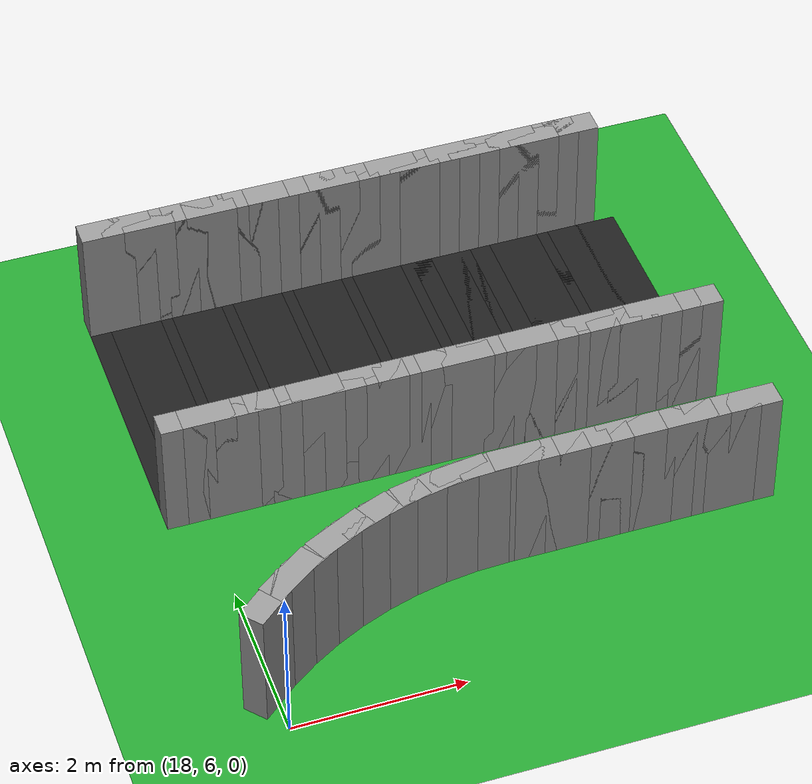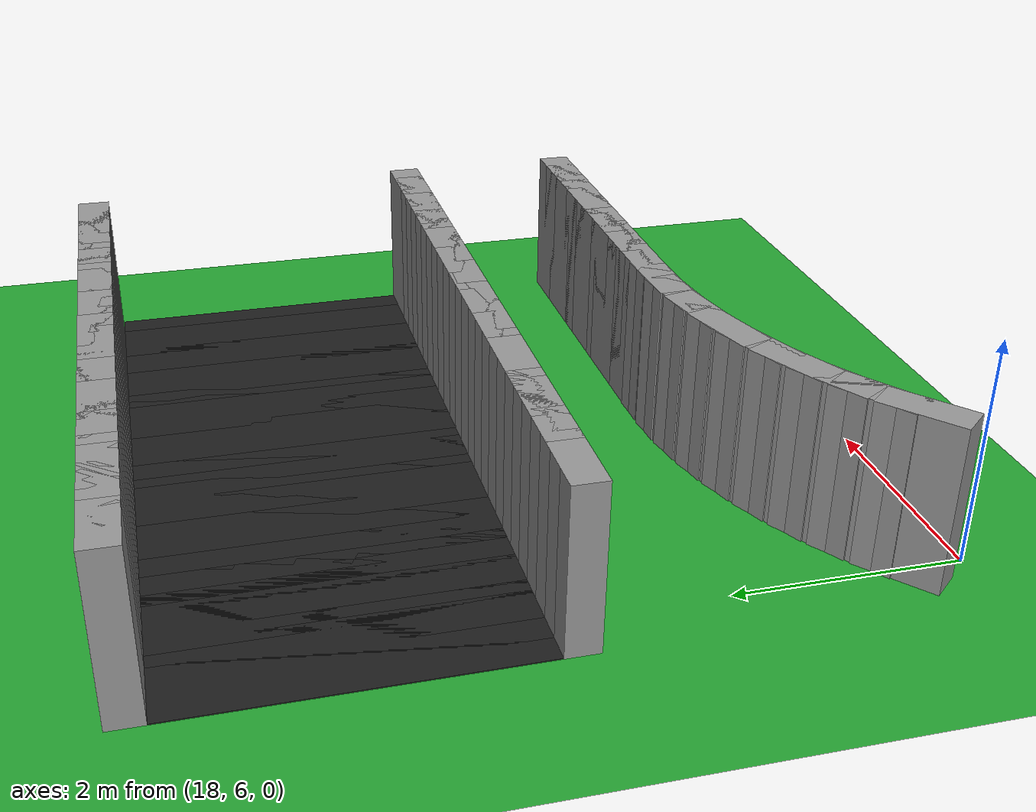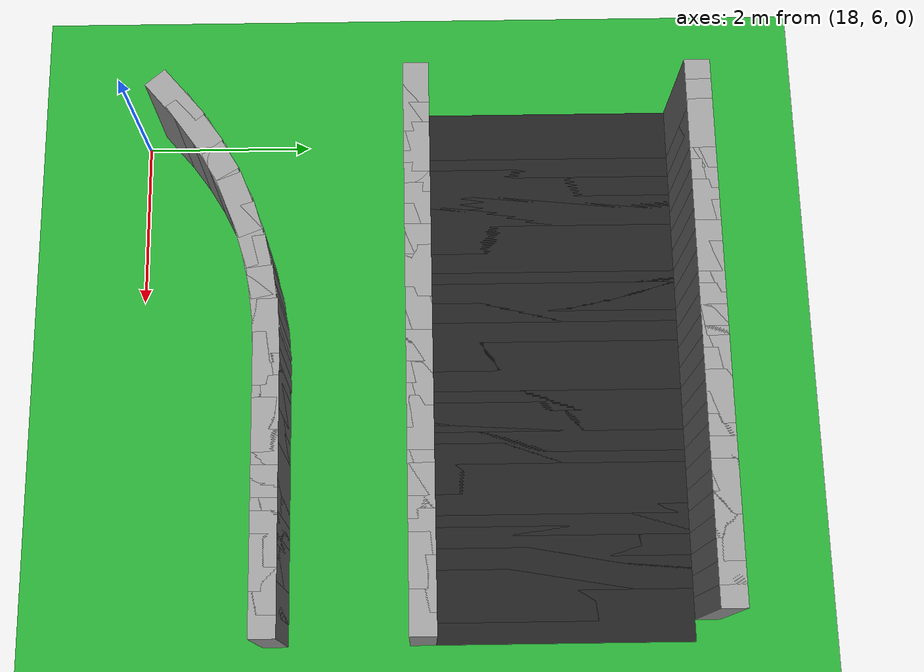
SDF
<sdf version="1.6">
 <world name="loop_extreme">
  <include><uri>model://sun</uri></include>
  <model name="ground_plane">
   <static>true</static>
   <link name="link">
    <collision name="collision">
     <surface><friction><ode><mu>100</mu><mu2>50</mu2></ode></friction></surface>
     <geometry><plane><normal>0 0 1</normal><size>120 120</size></plane></geometry>
    </collision>
    <visual name="visual">
     <geometry><plane><normal>0 0 1</normal><size>120 120</size></plane></geometry>
     <material>
      <script><uri>file://media/materials/scripts/gazebo.material</uri><name>Gazebo/Green</name></script>
     </material>
    </visual>
   </link>
  </model>
  <model name="curbL_89">
   <static>true</static>
   <pose>17.998 6.547 0.750 0 0 0.70272</pose>
   <link name="link">
    <collision name="collision"><geometry><box><size>0.744 0.300 1.500</size></box></geometry></collision>
    <visual name="visual">
     <geometry><box><size>0.744 0.300 1.500</size></box></geometry>
     <material>
      <script><uri>file://media/materials/scripts/gazebo.material</uri><name>Gazebo/Grey</name></script>
     </material>
    </visual>
   </link>
  </model>
  <model name="curbL_90">
   <static>true</static>
   <pose>18.302 6.783 0.750 0 0 0.62005</pose>
   <link name="link">
    <collision name="collision"><geometry><box><size>0.744 0.300 1.500</size></box></geometry></collision>
    <visual name="visual">
     <geometry><box><size>0.744 0.300 1.500</size></box></geometry>
     <material>
      <script><uri>file://media/materials/scripts/gazebo.material</uri><name>Gazebo/Grey</name></script>
     </material>
    </visual>
   </link>
  </model>
  <model name="curbL_91">
   <static>true</static>
   <pose>18.623 6.993 0.750 0 0 0.53738</pose>
   <link name="link">
    <collision name="collision"><geometry><box><size>0.744 0.300 1.500</size></box></geometry></collision>
    <visual name="visual">
     <geometry><box><size>0.744 0.300 1.500</size></box></geometry>
     <material>
      <script><uri>file://media/materials/scripts/gazebo.material</uri><name>Gazebo/Grey</name></script>
     </material>
    </visual>
   </link>
  </model>
  <model name="curbL_92">
   <static>true</static>
   <pose>18.961 7.176 0.750 0 0 0.45470</pose>
   <link name="link">
    <collision name="collision"><geometry><box><size>0.744 0.300 1.500</size></box></geometry></collision>
    <visual name="visual">
     <geometry><box><size>0.744 0.300 1.500</size></box></geometry>
     <material>
      <script><uri>file://media/materials/scripts/gazebo.material</uri><name>Gazebo/Grey</name></script>
     </material>
    </visual>
   </link>
  </model>
  <model name="curbL_93">
   <static>true</static>
   <pose>19.313 7.330 0.750 0 0 0.37203</pose>
   <link name="link">
    <collision name="collision"><geometry><box><size>0.744 0.300 1.500</size></box></geometry></collision>
    <visual name="visual">
     <geometry><box><size>0.744 0.300 1.500</size></box></geometry>
     <material>
      <script><uri>file://media/materials/scripts/gazebo.material</uri><name>Gazebo/Grey</name></script>
     </material>
    </visual>
   </link>
  </model>
  <model name="curbL_94">
   <static>true</static>
   <pose>19.676 7.455 0.750 0 0 0.28936</pose>
   <link name="link">
    <collision name="collision"><geometry><box><size>0.744 0.300 1.500</size></box></geometry></collision>
    <visual name="visual">
     <geometry><box><size>0.744 0.300 1.500</size></box></geometry>
     <material>
      <script><uri>file://media/materials/scripts/gazebo.material</uri><name>Gazebo/Grey</name></script>
     </material>
    </visual>
   </link>
  </model>
  <model name="curbL_95">
   <static>true</static>
   <pose>20.048 7.549 0.750 0 0 0.20668</pose>
   <link name="link">
    <collision name="collision"><geometry><box><size>0.744 0.300 1.500</size></box></geometry></collision>
    <visual name="visual">
     <geometry><box><size>0.744 0.300 1.500</size></box></geometry>
     <material>
      <script><uri>file://media/materials/scripts/gazebo.material</uri><name>Gazebo/Grey</name></script>
     </material>
    </visual>
   </link>
  </model>
  <model name="curbL_96">
   <static>true</static>
   <pose>20.427 7.612 0.750 0 0 0.12401</pose>
   <link name="link">
    <collision name="collision"><geometry><box><size>0.744 0.300 1.500</size></box></geometry></collision>
    <visual name="visual">
     <geometry><box><size>0.744 0.300 1.500</size></box></geometry>
     <material>
      <script><uri>file://media/materials/scripts/gazebo.material</uri><name>Gazebo/Grey</name></script>
     </material>
    </visual>
   </link>
  </model>
  <model name="curbL_97">
   <static>true</static>
   <pose>20.810 7.644 0.750 0 0 0.04134</pose>
   <link name="link">
    <collision name="collision"><geometry><box><size>0.744 0.300 1.500</size></box></geometry></collision>
    <visual name="visual">
     <geometry><box><size>0.744 0.300 1.500</size></box></geometry>
     <material>
      <script><uri>file://media/materials/scripts/gazebo.material</uri><name>Gazebo/Grey</name></script>
     </material>
    </visual>
   </link>
  </model>
  <model name="curbL_98">
   <static>true</static>
   <pose>21.127 7.652 0.750 0 0 0.00000</pose>
   <link name="link">
    <collision name="collision"><geometry><box><size>0.610 0.300 1.500</size></box></geometry></collision>
    <visual name="visual">
     <geometry><box><size>0.610 0.300 1.500</size></box></geometry>
     <material>
      <script><uri>file://media/materials/scripts/gazebo.material</uri><name>Gazebo/Grey</name></script>
     </material>
    </visual>
   </link>
  </model>
  <model name="curbL_99">
   <static>true</static>
   <pose>21.377 7.652 0.750 0 0 0.00000</pose>
   <link name="link">
    <collision name="collision"><geometry><box><size>0.610 0.300 1.500</size></box></geometry></collision>
    <visual name="visual">
     <geometry><box><size>0.610 0.300 1.500</size></box></geometry>
     <material>
      <script><uri>file://media/materials/scripts/gazebo.material</uri><name>Gazebo/Grey</name></script>
     </material>
    </visual>
   </link>
  </model>
  <model name="curbL_100">
   <static>true</static>
   <pose>21.627 7.652 0.750 0 0 0.00000</pose>
   <link name="link">
    <collision name="collision"><geometry><box><size>0.610 0.300 1.500</size></box></geometry></collision>
    <visual name="visual">
     <geometry><box><size>0.610 0.300 1.500</size></box></geometry>
     <material>
      <script><uri>file://media/materials/scripts/gazebo.material</uri><name>Gazebo/Grey</name></script>
     </material>
    </visual>
   </link>
  </model>
  <model name="curbL_101">
   <static>true</static>
   <pose>21.877 7.652 0.750 0 0 0.00000</pose>
   <link name="link">
    <collision name="collision"><geometry><box><size>0.610 0.300 1.500</size></box></geometry></collision>
    <visual name="visual">
     <geometry><box><size>0.610 0.300 1.500</size></box></geometry>
     <material>
      <script><uri>file://media/materials/scripts/gazebo.material</uri><name>Gazebo/Grey</name></script>
     </material>
    </visual>
   </link>
  </model>
  <model name="curbL_102">
   <static>true</static>
   <pose>22.127 7.652 0.750 0 0 0.00000</pose>
   <link name="link">
    <collision name="collision"><geometry><box><size>0.610 0.300 1.500</size></box></geometry></collision>
    <visual name="visual">
     <geometry><box><size>0.610 0.300 1.500</size></box></geometry>
     <material>
      <script><uri>file://media/materials/scripts/gazebo.material</uri><name>Gazebo/Grey</name></script>
     </material>
    </visual>
   </link>
  </model>
  <model name="curbL_103">
   <static>true</static>
   <pose>22.377 7.652 0.750 0 0 0.00000</pose>
   <link name="link">
    <collision name="collision"><geometry><box><size>0.610 0.300 1.500</size></box></geometry></collision>
    <visual name="visual">
     <geometry><box><size>0.610 0.300 1.500</size></box></geometry>
     <material>
      <script><uri>file://media/materials/scripts/gazebo.material</uri><name>Gazebo/Grey</name></script>
     </material>
    </visual>
   </link>
  </model>
  <model name="curbL_104">
   <static>true</static>
   <pose>22.627 7.652 0.750 0 0 0.00000</pose>
   <link name="link">
    <collision name="collision"><geometry><box><size>0.610 0.300 1.500</size></box></geometry></collision>
    <visual name="visual">
     <geometry><box><size>0.610 0.300 1.500</size></box></geometry>
     <material>
      <script><uri>file://media/materials/scripts/gazebo.material</uri><name>Gazebo/Grey</name></script>
     </material>
    </visual>
   </link>
  </model>
  <model name="curbL_105">
   <static>true</static>
   <pose>22.877 7.652 0.750 0 0 0.00000</pose>
   <link name="link">
    <collision name="collision"><geometry><box><size>0.610 0.300 1.500</size></box></geometry></collision>
    <visual name="visual">
     <geometry><box><size>0.610 0.300 1.500</size></box></geometry>
     <material>
      <script><uri>file://media/materials/scripts/gazebo.material</uri><name>Gazebo/Grey</name></script>
     </material>
    </visual>
   </link>
  </model>
  <model name="curbL_106">
   <static>true</static>
   <pose>23.127 7.652 0.750 0 0 0.00000</pose>
   <link name="link">
    <collision name="collision"><geometry><box><size>0.610 0.300 1.500</size></box></geometry></collision>
    <visual name="visual">
     <geometry><box><size>0.610 0.300 1.500</size></box></geometry>
     <material>
      <script><uri>file://media/materials/scripts/gazebo.material</uri><name>Gazebo/Grey</name></script>
     </material>
    </visual>
   </link>
  </model>
  <model name="curbL_107">
   <static>true</static>
   <pose>23.377 7.652 0.750 0 0 0.00000</pose>
   <link name="link">
    <collision name="collision"><geometry><box><size>0.610 0.300 1.500</size></box></geometry></collision>
    <visual name="visual">
     <geometry><box><size>0.610 0.300 1.500</size></box></geometry>
     <material>
      <script><uri>file://media/materials/scripts/gazebo.material</uri><name>Gazebo/Grey</name></script>
     </material>
    </visual>
   </link>
  </model>
  <model name="curbL_108">
   <static>true</static>
   <pose>23.627 7.652 0.750 0 0 0.00000</pose>
   <link name="link">
    <collision name="collision"><geometry><box><size>0.610 0.300 1.500</size></box></geometry></collision>
    <visual name="visual">
     <geometry><box><size>0.610 0.300 1.500</size></box></geometry>
     <material>
      <script><uri>file://media/materials/scripts/gazebo.material</uri><name>Gazebo/Grey</name></script>
     </material>
    </visual>
   </link>
  </model>
  <model name="curbL_109">
   <static>true</static>
   <pose>23.877 7.652 0.750 0 0 0.00000</pose>
   <link name="link">
    <collision name="collision"><geometry><box><size>0.610 0.300 1.500</size></box></geometry></collision>
    <visual name="visual">
     <geometry><box><size>0.610 0.300 1.500</size></box></geometry>
     <material>
      <script><uri>file://media/materials/scripts/gazebo.material</uri><name>Gazebo/Grey</name></script>
     </material>
    </visual>
   </link>
  </model>
  <model name="asphalt_149">
   <static>true</static>
   <pose>23.877 11.004 0.005 0 0 3.14159</pose>
   <link name="link">
    <visual name="visual">
     <geometry><box><size>0.610 3.000 0.010</size></box></geometry>
     <material>
      <script><uri>file://media/materials/scripts/gazebo.material</uri><name>Gazebo/Black</name></script>
     </material>
    </visual>
   </link>
  </model>
  <model name="curbL_149">
   <static>true</static>
   <pose>23.877 9.354 0.750 0 0 3.14159</pose>
   <link name="link">
    <collision name="collision"><geometry><box><size>0.610 0.300 1.500</size></box></geometry></collision>
    <visual name="visual">
     <geometry><box><size>0.610 0.300 1.500</size></box></geometry>
     <material>
      <script><uri>file://media/materials/scripts/gazebo.material</uri><name>Gazebo/Grey</name></script>
     </material>
    </visual>
   </link>
  </model>
  <model name="asphalt_150">
   <static>true</static>
   <pose>23.627 11.004 0.005 0 0 3.14159</pose>
   <link name="link">
    <visual name="visual">
     <geometry><box><size>0.610 3.000 0.010</size></box></geometry>
     <material>
      <script><uri>file://media/materials/scripts/gazebo.material</uri><name>Gazebo/Black</name></script>
     </material>
    </visual>
   </link>
  </model>
  <model name="curbL_150">
   <static>true</static>
   <pose>23.627 9.354 0.750 0 0 3.14159</pose>
   <link name="link">
    <collision name="collision"><geometry><box><size>0.610 0.300 1.500</size></box></geometry></collision>
    <visual name="visual">
     <geometry><box><size>0.610 0.300 1.500</size></box></geometry>
     <material>
      <script><uri>file://media/materials/scripts/gazebo.material</uri><name>Gazebo/Grey</name></script>
     </material>
    </visual>
   </link>
  </model>
  <model name="curbR_150">
   <static>true</static>
   <pose>23.627 12.654 0.750 0 0 3.14159</pose>
   <link name="link">
    <collision name="collision"><geometry><box><size>0.610 0.300 1.500</size></box></geometry></collision>
    <visual name="visual">
     <geometry><box><size>0.610 0.300 1.500</size></box></geometry>
     <material>
      <script><uri>file://media/materials/scripts/gazebo.material</uri><name>Gazebo/Grey</name></script>
     </material>
    </visual>
   </link>
  </model>
  <model name="asphalt_151">
   <static>true</static>
   <pose>23.377 11.004 0.005 0 0 3.14159</pose>
   <link name="link">
    <visual name="visual">
     <geometry><box><size>0.610 3.000 0.010</size></box></geometry>
     <material>
      <script><uri>file://media/materials/scripts/gazebo.material</uri><name>Gazebo/Black</name></script>
     </material>
    </visual>
   </link>
  </model>
  <model name="curbL_151">
   <static>true</static>
   <pose>23.377 9.354 0.750 0 0 3.14159</pose>
   <link name="link">
    <collision name="collision"><geometry><box><size>0.610 0.300 1.500</size></box></geometry></collision>
    <visual name="visual">
     <geometry><box><size>0.610 0.300 1.500</size></box></geometry>
     <material>
      <script><uri>file://media/materials/scripts/gazebo.material</uri><name>Gazebo/Grey</name></script>
     </material>
    </visual>
   </link>
  </model>
  <model name="curbR_151">
   <static>true</static>
   <pose>23.377 12.654 0.750 0 0 3.14159</pose>
   <link name="link">
    <collision name="collision"><geometry><box><size>0.610 0.300 1.500</size></box></geometry></collision>
    <visual name="visual">
     <geometry><box><size>0.610 0.300 1.500</size></box></geometry>
     <material>
      <script><uri>file://media/materials/scripts/gazebo.material</uri><name>Gazebo/Grey</name></script>
     </material>
    </visual>
   </link>
  </model>
  <model name="asphalt_152">
   <static>true</static>
   <pose>23.127 11.004 0.005 0 0 3.14159</pose>
   <link name="link">
    <visual name="visual">
     <geometry><box><size>0.610 3.000 0.010</size></box></geometry>
     <material>
      <script><uri>file://media/materials/scripts/gazebo.material</uri><name>Gazebo/Black</name></script>
     </material>
    </visual>
   </link>
  </model>
  <model name="curbL_152">
   <static>true</static>
   <pose>23.127 9.354 0.750 0 0 3.14159</pose>
   <link name="link">
    <collision name="collision"><geometry><box><size>0.610 0.300 1.500</size></box></geometry></collision>
    <visual name="visual">
     <geometry><box><size>0.610 0.300 1.500</size></box></geometry>
     <material>
      <script><uri>file://media/materials/scripts/gazebo.material</uri><name>Gazebo/Grey</name></script>
     </material>
    </visual>
   </link>
  </model>
  <model name="curbR_152">
   <static>true</static>
   <pose>23.127 12.654 0.750 0 0 3.14159</pose>
   <link name="link">
    <collision name="collision"><geometry><box><size>0.610 0.300 1.500</size></box></geometry></collision>
    <visual name="visual">
     <geometry><box><size>0.610 0.300 1.500</size></box></geometry>
     <material>
      <script><uri>file://media/materials/scripts/gazebo.material</uri><name>Gazebo/Grey</name></script>
     </material>
    </visual>
   </link>
  </model>
  <model name="asphalt_153">
   <static>true</static>
   <pose>22.877 11.004 0.005 0 0 3.14159</pose>
   <link name="link">
    <visual name="visual">
     <geometry><box><size>0.610 3.000 0.010</size></box></geometry>
     <material>
      <script><uri>file://media/materials/scripts/gazebo.material</uri><name>Gazebo/Black</name></script>
     </material>
    </visual>
   </link>
  </model>
  <model name="curbL_153">
   <static>true</static>
   <pose>22.877 9.354 0.750 0 0 3.14159</pose>
   <link name="link">
    <collision name="collision"><geometry><box><size>0.610 0.300 1.500</size></box></geometry></collision>
    <visual name="visual">
     <geometry><box><size>0.610 0.300 1.500</size></box></geometry>
     <material>
      <script><uri>file://media/materials/scripts/gazebo.material</uri><name>Gazebo/Grey</name></script>
     </material>
    </visual>
   </link>
  </model>
  <model name="curbR_153">
   <static>true</static>
   <pose>22.877 12.654 0.750 0 0 3.14159</pose>
   <link name="link">
    <collision name="collision"><geometry><box><size>0.610 0.300 1.500</size></box></geometry></collision>
    <visual name="visual">
     <geometry><box><size>0.610 0.300 1.500</size></box></geometry>
     <material>
      <script><uri>file://media/materials/scripts/gazebo.material</uri><name>Gazebo/Grey</name></script>
     </material>
    </visual>
   </link>
  </model>
  <model name="asphalt_154">
   <static>true</static>
   <pose>22.627 11.004 0.005 0 0 3.14159</pose>
   <link name="link">
    <visual name="visual">
     <geometry><box><size>0.610 3.000 0.010</size></box></geometry>
     <material>
      <script><uri>file://media/materials/scripts/gazebo.material</uri><name>Gazebo/Black</name></script>
     </material>
    </visual>
   </link>
  </model>
  <model name="curbL_154">
   <static>true</static>
   <pose>22.627 9.354 0.750 0 0 3.14159</pose>
   <link name="link">
    <collision name="collision"><geometry><box><size>0.610 0.300 1.500</size></box></geometry></collision>
    <visual name="visual">
     <geometry><box><size>0.610 0.300 1.500</size></box></geometry>
     <material>
      <script><uri>file://media/materials/scripts/gazebo.material</uri><name>Gazebo/Grey</name></script>
     </material>
    </visual>
   </link>
  </model>
  <model name="curbR_154">
   <static>true</static>
   <pose>22.627 12.654 0.750 0 0 3.14159</pose>
   <link name="link">
    <collision name="collision"><geometry><box><size>0.610 0.300 1.500</size></box></geometry></collision>
    <visual name="visual">
     <geometry><box><size>0.610 0.300 1.500</size></box></geometry>
     <material>
      <script><uri>file://media/materials/scripts/gazebo.material</uri><name>Gazebo/Grey</name></script>
     </material>
    </visual>
   </link>
  </model>
  <model name="asphalt_155">
   <static>true</static>
   <pose>22.377 11.004 0.005 0 0 3.14159</pose>
   <link name="link">
    <visual name="visual">
     <geometry><box><size>0.610 3.000 0.010</size></box></geometry>
     <material>
      <script><uri>file://media/materials/scripts/gazebo.material</uri><name>Gazebo/Black</name></script>
     </material>
    </visual>
   </link>
  </model>
  <model name="curbL_155">
   <static>true</static>
   <pose>22.377 9.354 0.750 0 0 3.14159</pose>
   <link name="link">
    <collision name="collision"><geometry><box><size>0.610 0.300 1.500</size></box></geometry></collision>
    <visual name="visual">
     <geometry><box><size>0.610 0.300 1.500</size></box></geometry>
     <material>
      <script><uri>file://media/materials/scripts/gazebo.material</uri><name>Gazebo/Grey</name></script>
     </material>
    </visual>
   </link>
  </model>
  <model name="curbR_155">
   <static>true</static>
   <pose>22.377 12.654 0.750 0 0 3.14159</pose>
   <link name="link">
    <collision name="collision"><geometry><box><size>0.610 0.300 1.500</size></box></geometry></collision>
    <visual name="visual">
     <geometry><box><size>0.610 0.300 1.500</size></box></geometry>
     <material>
      <script><uri>file://media/materials/scripts/gazebo.material</uri><name>Gazebo/Grey</name></script>
     </material>
    </visual>
   </link>
  </model>
  <model name="asphalt_156">
   <static>true</static>
   <pose>22.127 11.004 0.005 0 0 3.14159</pose>
   <link name="link">
    <visual name="visual">
     <geometry><box><size>0.610 3.000 0.010</size></box></geometry>
     <material>
      <script><uri>file://media/materials/scripts/gazebo.material</uri><name>Gazebo/Black</name></script>
     </material>
    </visual>
   </link>
  </model>
  <model name="curbL_156">
   <static>true</static>
   <pose>22.127 9.354 0.750 0 0 3.14159</pose>
   <link name="link">
    <collision name="collision"><geometry><box><size>0.610 0.300 1.500</size></box></geometry></collision>
    <visual name="visual">
     <geometry><box><size>0.610 0.300 1.500</size></box></geometry>
     <material>
      <script><uri>file://media/materials/scripts/gazebo.material</uri><name>Gazebo/Grey</name></script>
     </material>
    </visual>
   </link>
  </model>
  <model name="curbR_156">
   <static>true</static>
   <pose>22.127 12.654 0.750 0 0 3.14159</pose>
   <link name="link">
    <collision name="collision"><geometry><box><size>0.610 0.300 1.500</size></box></geometry></collision>
    <visual name="visual">
     <geometry><box><size>0.610 0.300 1.500</size></box></geometry>
     <material>
      <script><uri>file://media/materials/scripts/gazebo.material</uri><name>Gazebo/Grey</name></script>
     </material>
    </visual>
   </link>
  </model>
  <model name="asphalt_157">
   <static>true</static>
   <pose>21.877 11.004 0.005 0 0 3.14159</pose>
   <link name="link">
    <visual name="visual">
     <geometry><box><size>0.610 3.000 0.010</size></box></geometry>
     <material>
      <script><uri>file://media/materials/scripts/gazebo.material</uri><name>Gazebo/Black</name></script>
     </material>
    </visual>
   </link>
  </model>
  <model name="curbL_157">
   <static>true</static>
   <pose>21.877 9.354 0.750 0 0 3.14159</pose>
   <link name="link">
    <collision name="collision"><geometry><box><size>0.610 0.300 1.500</size></box></geometry></collision>
    <visual name="visual">
     <geometry><box><size>0.610 0.300 1.500</size></box></geometry>
     <material>
      <script><uri>file://media/materials/scripts/gazebo.material</uri><name>Gazebo/Grey</name></script>
     </material>
    </visual>
   </link>
  </model>
  <model name="curbR_157">
   <static>true</static>
   <pose>21.877 12.654 0.750 0 0 3.14159</pose>
   <link name="link">
    <collision name="collision"><geometry><box><size>0.610 0.300 1.500</size></box></geometry></collision>
    <visual name="visual">
     <geometry><box><size>0.610 0.300 1.500</size></box></geometry>
     <material>
      <script><uri>file://media/materials/scripts/gazebo.material</uri><name>Gazebo/Grey</name></script>
     </material>
    </visual>
   </link>
  </model>
  <model name="asphalt_158">
   <static>true</static>
   <pose>21.627 11.004 0.005 0 0 3.14159</pose>
   <link name="link">
    <visual name="visual">
     <geometry><box><size>0.610 3.000 0.010</size></box></geometry>
     <material>
      <script><uri>file://media/materials/scripts/gazebo.material</uri><name>Gazebo/Black</name></script>
     </material>
    </visual>
   </link>
  </model>
  <model name="curbL_158">
   <static>true</static>
   <pose>21.627 9.354 0.750 0 0 3.14159</pose>
   <link name="link">
    <collision name="collision"><geometry><box><size>0.610 0.300 1.500</size></box></geometry></collision>
    <visual name="visual">
     <geometry><box><size>0.610 0.300 1.500</size></box></geometry>
     <material>
      <script><uri>file://media/materials/scripts/gazebo.material</uri><name>Gazebo/Grey</name></script>
     </material>
    </visual>
   </link>
  </model>
  <model name="curbR_158">
   <static>true</static>
   <pose>21.627 12.654 0.750 0 0 3.14159</pose>
   <link name="link">
    <collision name="collision"><geometry><box><size>0.610 0.300 1.500</size></box></geometry></collision>
    <visual name="visual">
     <geometry><box><size>0.610 0.300 1.500</size></box></geometry>
     <material>
      <script><uri>file://media/materials/scripts/gazebo.material</uri><name>Gazebo/Grey</name></script>
     </material>
    </visual>
   </link>
  </model>
  <model name="asphalt_159">
   <static>true</static>
   <pose>21.377 11.004 0.005 0 0 3.14159</pose>
   <link name="link">
    <visual name="visual">
     <geometry><box><size>0.610 3.000 0.010</size></box></geometry>
     <material>
      <script><uri>file://media/materials/scripts/gazebo.material</uri><name>Gazebo/Black</name></script>
     </material>
    </visual>
   </link>
  </model>
  <model name="curbL_159">
   <static>true</static>
   <pose>21.377 9.354 0.750 0 0 3.14159</pose>
   <link name="link">
    <collision name="collision"><geometry><box><size>0.610 0.300 1.500</size></box></geometry></collision>
    <visual name="visual">
     <geometry><box><size>0.610 0.300 1.500</size></box></geometry>
     <material>
      <script><uri>file://media/materials/scripts/gazebo.material</uri><name>Gazebo/Grey</name></script>
     </material>
    </visual>
   </link>
  </model>
  <model name="curbR_159">
   <static>true</static>
   <pose>21.377 12.654 0.750 0 0 3.14159</pose>
   <link name="link">
    <collision name="collision"><geometry><box><size>0.610 0.300 1.500</size></box></geometry></collision>
    <visual name="visual">
     <geometry><box><size>0.610 0.300 1.500</size></box></geometry>
     <material>
      <script><uri>file://media/materials/scripts/gazebo.material</uri><name>Gazebo/Grey</name></script>
     </material>
    </visual>
   </link>
  </model>
  <model name="asphalt_160">
   <static>true</static>
   <pose>21.127 11.004 0.005 0 0 3.14159</pose>
   <link name="link">
    <visual name="visual">
     <geometry><box><size>0.610 3.000 0.010</size></box></geometry>
     <material>
      <script><uri>file://media/materials/scripts/gazebo.material</uri><name>Gazebo/Black</name></script>
     </material>
    </visual>
   </link>
  </model>
  <model name="curbL_160">
   <static>true</static>
   <pose>21.127 9.354 0.750 0 0 3.14159</pose>
   <link name="link">
    <collision name="collision"><geometry><box><size>0.610 0.300 1.500</size></box></geometry></collision>
    <visual name="visual">
     <geometry><box><size>0.610 0.300 1.500</size></box></geometry>
     <material>
      <script><uri>file://media/materials/scripts/gazebo.material</uri><name>Gazebo/Grey</name></script>
     </material>
    </visual>
   </link>
  </model>
  <model name="curbR_160">
   <static>true</static>
   <pose>21.127 12.654 0.750 0 0 3.14159</pose>
   <link name="link">
    <collision name="collision"><geometry><box><size>0.610 0.300 1.500</size></box></geometry></collision>
    <visual name="visual">
     <geometry><box><size>0.610 0.300 1.500</size></box></geometry>
     <material>
      <script><uri>file://media/materials/scripts/gazebo.material</uri><name>Gazebo/Grey</name></script>
     </material>
    </visual>
   </link>
  </model>
  <model name="asphalt_161">
   <static>true</static>
   <pose>20.877 11.004 0.005 0 0 3.14159</pose>
   <link name="link">
    <visual name="visual">
     <geometry><box><size>0.610 3.000 0.010</size></box></geometry>
     <material>
      <script><uri>file://media/materials/scripts/gazebo.material</uri><name>Gazebo/Black</name></script>
     </material>
    </visual>
   </link>
  </model>
  <model name="curbL_161">
   <static>true</static>
   <pose>20.877 9.354 0.750 0 0 3.14159</pose>
   <link name="link">
    <collision name="collision"><geometry><box><size>0.610 0.300 1.500</size></box></geometry></collision>
    <visual name="visual">
     <geometry><box><size>0.610 0.300 1.500</size></box></geometry>
     <material>
      <script><uri>file://media/materials/scripts/gazebo.material</uri><name>Gazebo/Grey</name></script>
     </material>
    </visual>
   </link>
  </model>
  <model name="curbR_161">
   <static>true</static>
   <pose>20.877 12.654 0.750 0 0 3.14159</pose>
   <link name="link">
    <collision name="collision"><geometry><box><size>0.610 0.300 1.500</size></box></geometry></collision>
    <visual name="visual">
     <geometry><box><size>0.610 0.300 1.500</size></box></geometry>
     <material>
      <script><uri>file://media/materials/scripts/gazebo.material</uri><name>Gazebo/Grey</name></script>
     </material>
    </visual>
   </link>
  </model>
  <model name="asphalt_162">
   <static>true</static>
   <pose>20.627 11.004 0.005 0 0 3.14159</pose>
   <link name="link">
    <visual name="visual">
     <geometry><box><size>0.610 3.000 0.010</size></box></geometry>
     <material>
      <script><uri>file://media/materials/scripts/gazebo.material</uri><name>Gazebo/Black</name></script>
     </material>
    </visual>
   </link>
  </model>
  <model name="curbL_162">
   <static>true</static>
   <pose>20.627 9.354 0.750 0 0 3.14159</pose>
   <link name="link">
    <collision name="collision"><geometry><box><size>0.610 0.300 1.500</size></box></geometry></collision>
    <visual name="visual">
     <geometry><box><size>0.610 0.300 1.500</size></box></geometry>
     <material>
      <script><uri>file://media/materials/scripts/gazebo.material</uri><name>Gazebo/Grey</name></script>
     </material>
    </visual>
   </link>
  </model>
  <model name="curbR_162">
   <static>true</static>
   <pose>20.627 12.654 0.750 0 0 3.14159</pose>
   <link name="link">
    <collision name="collision"><geometry><box><size>0.610 0.300 1.500</size></box></geometry></collision>
    <visual name="visual">
     <geometry><box><size>0.610 0.300 1.500</size></box></geometry>
     <material>
      <script><uri>file://media/materials/scripts/gazebo.material</uri><name>Gazebo/Grey</name></script>
     </material>
    </visual>
   </link>
  </model>
  <model name="asphalt_163">
   <static>true</static>
   <pose>20.377 11.004 0.005 0 0 3.14159</pose>
   <link name="link">
    <visual name="visual">
     <geometry><box><size>0.610 3.000 0.010</size></box></geometry>
     <material>
      <script><uri>file://media/materials/scripts/gazebo.material</uri><name>Gazebo/Black</name></script>
     </material>
    </visual>
   </link>
  </model>
  <model name="curbL_163">
   <static>true</static>
   <pose>20.377 9.354 0.750 0 0 3.14159</pose>
   <link name="link">
    <collision name="collision"><geometry><box><size>0.610 0.300 1.500</size></box></geometry></collision>
    <visual name="visual">
     <geometry><box><size>0.610 0.300 1.500</size></box></geometry>
     <material>
      <script><uri>file://media/materials/scripts/gazebo.material</uri><name>Gazebo/Grey</name></script>
     </material>
    </visual>
   </link>
  </model>
  <model name="curbR_163">
   <static>true</static>
   <pose>20.377 12.654 0.750 0 0 3.14159</pose>
   <link name="link">
    <collision name="collision"><geometry><box><size>0.610 0.300 1.500</size></box></geometry></collision>
    <visual name="visual">
     <geometry><box><size>0.610 0.300 1.500</size></box></geometry>
     <material>
      <script><uri>file://media/materials/scripts/gazebo.material</uri><name>Gazebo/Grey</name></script>
     </material>
    </visual>
   </link>
  </model>
  <model name="asphalt_164">
   <static>true</static>
   <pose>20.127 11.004 0.005 0 0 3.14159</pose>
   <link name="link">
    <visual name="visual">
     <geometry><box><size>0.610 3.000 0.010</size></box></geometry>
     <material>
      <script><uri>file://media/materials/scripts/gazebo.material</uri><name>Gazebo/Black</name></script>
     </material>
    </visual>
   </link>
  </model>
  <model name="curbL_164">
   <static>true</static>
   <pose>20.127 9.354 0.750 0 0 3.14159</pose>
   <link name="link">
    <collision name="collision"><geometry><box><size>0.610 0.300 1.500</size></box></geometry></collision>
    <visual name="visual">
     <geometry><box><size>0.610 0.300 1.500</size></box></geometry>
     <material>
      <script><uri>file://media/materials/scripts/gazebo.material</uri><name>Gazebo/Grey</name></script>
     </material>
    </visual>
   </link>
  </model>
  <model name="curbR_164">
   <static>true</static>
   <pose>20.127 12.654 0.750 0 0 3.14159</pose>
   <link name="link">
    <collision name="collision"><geometry><box><size>0.610 0.300 1.500</size></box></geometry></collision>
    <visual name="visual">
     <geometry><box><size>0.610 0.300 1.500</size></box></geometry>
     <material>
      <script><uri>file://media/materials/scripts/gazebo.material</uri><name>Gazebo/Grey</name></script>
     </material>
    </visual>
   </link>
  </model>
  <model name="asphalt_165">
   <static>true</static>
   <pose>19.877 11.004 0.005 0 0 3.14159</pose>
   <link name="link">
    <visual name="visual">
     <geometry><box><size>0.610 3.000 0.010</size></box></geometry>
     <material>
      <script><uri>file://media/materials/scripts/gazebo.material</uri><name>Gazebo/Black</name></script>
     </material>
    </visual>
   </link>
  </model>
  <model name="curbL_165">
   <static>true</static>
   <pose>19.877 9.354 0.750 0 0 3.14159</pose>
   <link name="link">
    <collision name="collision"><geometry><box><size>0.610 0.300 1.500</size></box></geometry></collision>
    <visual name="visual">
     <geometry><box><size>0.610 0.300 1.500</size></box></geometry>
     <material>
      <script><uri>file://media/materials/scripts/gazebo.material</uri><name>Gazebo/Grey</name></script>
     </material>
    </visual>
   </link>
  </model>
  <model name="curbR_165">
   <static>true</static>
   <pose>19.877 12.654 0.750 0 0 3.14159</pose>
   <link name="link">
    <collision name="collision"><geometry><box><size>0.610 0.300 1.500</size></box></geometry></collision>
    <visual name="visual">
     <geometry><box><size>0.610 0.300 1.500</size></box></geometry>
     <material>
      <script><uri>file://media/materials/scripts/gazebo.material</uri><name>Gazebo/Grey</name></script>
     </material>
    </visual>
   </link>
  </model>
  <model name="asphalt_166">
   <static>true</static>
   <pose>19.627 11.004 0.005 0 0 3.14159</pose>
   <link name="link">
    <visual name="visual">
     <geometry><box><size>0.610 3.000 0.010</size></box></geometry>
     <material>
      <script><uri>file://media/materials/scripts/gazebo.material</uri><name>Gazebo/Black</name></script>
     </material>
    </visual>
   </link>
  </model>
  <model name="curbL_166">
   <static>true</static>
   <pose>19.627 9.354 0.750 0 0 3.14159</pose>
   <link name="link">
    <collision name="collision"><geometry><box><size>0.610 0.300 1.500</size></box></geometry></collision>
    <visual name="visual">
     <geometry><box><size>0.610 0.300 1.500</size></box></geometry>
     <material>
      <script><uri>file://media/materials/scripts/gazebo.material</uri><name>Gazebo/Grey</name></script>
     </material>
    </visual>
   </link>
  </model>
  <model name="curbR_166">
   <static>true</static>
   <pose>19.627 12.654 0.750 0 0 3.14159</pose>
   <link name="link">
    <collision name="collision"><geometry><box><size>0.610 0.300 1.500</size></box></geometry></collision>
    <visual name="visual">
     <geometry><box><size>0.610 0.300 1.500</size></box></geometry>
     <material>
      <script><uri>file://media/materials/scripts/gazebo.material</uri><name>Gazebo/Grey</name></script>
     </material>
    </visual>
   </link>
  </model>
  <model name="asphalt_167">
   <static>true</static>
   <pose>19.377 11.004 0.005 0 0 3.14159</pose>
   <link name="link">
    <visual name="visual">
     <geometry><box><size>0.610 3.000 0.010</size></box></geometry>
     <material>
      <script><uri>file://media/materials/scripts/gazebo.material</uri><name>Gazebo/Black</name></script>
     </material>
    </visual>
   </link>
  </model>
  <model name="curbL_167">
   <static>true</static>
   <pose>19.377 9.354 0.750 0 0 3.14159</pose>
   <link name="link">
    <collision name="collision"><geometry><box><size>0.610 0.300 1.500</size></box></geometry></collision>
    <visual name="visual">
     <geometry><box><size>0.610 0.300 1.500</size></box></geometry>
     <material>
      <script><uri>file://media/materials/scripts/gazebo.material</uri><name>Gazebo/Grey</name></script>
     </material>
    </visual>
   </link>
  </model>
  <model name="curbR_167">
   <static>true</static>
   <pose>19.377 12.654 0.750 0 0 3.14159</pose>
   <link name="link">
    <collision name="collision"><geometry><box><size>0.610 0.300 1.500</size></box></geometry></collision>
    <visual name="visual">
     <geometry><box><size>0.610 0.300 1.500</size></box></geometry>
     <material>
      <script><uri>file://media/materials/scripts/gazebo.material</uri><name>Gazebo/Grey</name></script>
     </material>
    </visual>
   </link>
  </model>
  <model name="asphalt_168">
   <static>true</static>
   <pose>19.127 11.004 0.005 0 0 3.14159</pose>
   <link name="link">
    <visual name="visual">
     <geometry><box><size>0.610 3.000 0.010</size></box></geometry>
     <material>
      <script><uri>file://media/materials/scripts/gazebo.material</uri><name>Gazebo/Black</name></script>
     </material>
    </visual>
   </link>
  </model>
  <model name="curbL_168">
   <static>true</static>
   <pose>19.127 9.354 0.750 0 0 3.14159</pose>
   <link name="link">
    <collision name="collision"><geometry><box><size>0.610 0.300 1.500</size></box></geometry></collision>
    <visual name="visual">
     <geometry><box><size>0.610 0.300 1.500</size></box></geometry>
     <material>
      <script><uri>file://media/materials/scripts/gazebo.material</uri><name>Gazebo/Grey</name></script>
     </material>
    </visual>
   </link>
  </model>
  <model name="curbR_168">
   <static>true</static>
   <pose>19.127 12.654 0.750 0 0 3.14159</pose>
   <link name="link">
    <collision name="collision"><geometry><box><size>0.610 0.300 1.500</size></box></geometry></collision>
    <visual name="visual">
     <geometry><box><size>0.610 0.300 1.500</size></box></geometry>
     <material>
      <script><uri>file://media/materials/scripts/gazebo.material</uri><name>Gazebo/Grey</name></script>
     </material>
    </visual>
   </link>
  </model>
  <model name="asphalt_169">
   <static>true</static>
   <pose>18.877 11.004 0.005 0 0 3.14159</pose>
   <link name="link">
    <visual name="visual">
     <geometry><box><size>0.610 3.000 0.010</size></box></geometry>
     <material>
      <script><uri>file://media/materials/scripts/gazebo.material</uri><name>Gazebo/Black</name></script>
     </material>
    </visual>
   </link>
  </model>
  <model name="curbL_169">
   <static>true</static>
   <pose>18.877 9.354 0.750 0 0 3.14159</pose>
   <link name="link">
    <collision name="collision"><geometry><box><size>0.610 0.300 1.500</size></box></geometry></collision>
    <visual name="visual">
     <geometry><box><size>0.610 0.300 1.500</size></box></geometry>
     <material>
      <script><uri>file://media/materials/scripts/gazebo.material</uri><name>Gazebo/Grey</name></script>
     </material>
    </visual>
   </link>
  </model>
  <model name="curbR_169">
   <static>true</static>
   <pose>18.877 12.654 0.750 0 0 3.14159</pose>
   <link name="link">
    <collision name="collision"><geometry><box><size>0.610 0.300 1.500</size></box></geometry></collision>
    <visual name="visual">
     <geometry><box><size>0.610 0.300 1.500</size></box></geometry>
     <material>
      <script><uri>file://media/materials/scripts/gazebo.material</uri><name>Gazebo/Grey</name></script>
     </material>
    </visual>
   </link>
  </model>
  <model name="asphalt_170">
   <static>true</static>
   <pose>18.627 11.004 0.005 0 0 3.14159</pose>
   <link name="link">
    <visual name="visual">
     <geometry><box><size>0.610 3.000 0.010</size></box></geometry>
     <material>
      <script><uri>file://media/materials/scripts/gazebo.material</uri><name>Gazebo/Black</name></script>
     </material>
    </visual>
   </link>
  </model>
  <model name="curbL_170">
   <static>true</static>
   <pose>18.627 9.354 0.750 0 0 3.14159</pose>
   <link name="link">
    <collision name="collision"><geometry><box><size>0.610 0.300 1.500</size></box></geometry></collision>
    <visual name="visual">
     <geometry><box><size>0.610 0.300 1.500</size></box></geometry>
     <material>
      <script><uri>file://media/materials/scripts/gazebo.material</uri><name>Gazebo/Grey</name></script>
     </material>
    </visual>
   </link>
  </model>
  <model name="curbR_170">
   <static>true</static>
   <pose>18.627 12.654 0.750 0 0 3.14159</pose>
   <link name="link">
    <collision name="collision"><geometry><box><size>0.610 0.300 1.500</size></box></geometry></collision>
    <visual name="visual">
     <geometry><box><size>0.610 0.300 1.500</size></box></geometry>
     <material>
      <script><uri>file://media/materials/scripts/gazebo.material</uri><name>Gazebo/Grey</name></script>
     </material>
    </visual>
   </link>
  </model>
  <model name="asphalt_171">
   <static>true</static>
   <pose>18.377 11.004 0.005 0 0 3.14159</pose>
   <link name="link">
    <visual name="visual">
     <geometry><box><size>0.610 3.000 0.010</size></box></geometry>
     <material>
      <script><uri>file://media/materials/scripts/gazebo.material</uri><name>Gazebo/Black</name></script>
     </material>
    </visual>
   </link>
  </model>
  <model name="curbL_171">
   <static>true</static>
   <pose>18.377 9.354 0.750 0 0 3.14159</pose>
   <link name="link">
    <collision name="collision"><geometry><box><size>0.610 0.300 1.500</size></box></geometry></collision>
    <visual name="visual">
     <geometry><box><size>0.610 0.300 1.500</size></box></geometry>
     <material>
      <script><uri>file://media/materials/scripts/gazebo.material</uri><name>Gazebo/Grey</name></script>
     </material>
    </visual>
   </link>
  </model>
  <model name="curbR_171">
   <static>true</static>
   <pose>18.377 12.654 0.750 0 0 3.14159</pose>
   <link name="link">
    <collision name="collision"><geometry><box><size>0.610 0.300 1.500</size></box></geometry></collision>
    <visual name="visual">
     <geometry><box><size>0.610 0.300 1.500</size></box></geometry>
     <material>
      <script><uri>file://media/materials/scripts/gazebo.material</uri><name>Gazebo/Grey</name></script>
     </material>
    </visual>
   </link>
  </model>
  <model name="asphalt_172">
   <static>true</static>
   <pose>18.127 11.004 0.005 0 0 3.14159</pose>
   <link name="link">
    <visual name="visual">
     <geometry><box><size>0.610 3.000 0.010</size></box></geometry>
     <material>
      <script><uri>file://media/materials/scripts/gazebo.material</uri><name>Gazebo/Black</name></script>
     </material>
    </visual>
   </link>
  </model>
  <model name="curbL_172">
   <static>true</static>
   <pose>18.127 9.354 0.750 0 0 3.14159</pose>
   <link name="link">
    <collision name="collision"><geometry><box><size>0.610 0.300 1.500</size></box></geometry></collision>
    <visual name="visual">
     <geometry><box><size>0.610 0.300 1.500</size></box></geometry>
     <material>
      <script><uri>file://media/materials/scripts/gazebo.material</uri><name>Gazebo/Grey</name></script>
     </material>
    </visual>
   </link>
  </model>
  <model name="curbR_172">
   <static>true</static>
   <pose>18.127 12.654 0.750 0 0 3.14159</pose>
   <link name="link">
    <collision name="collision"><geometry><box><size>0.610 0.300 1.500</size></box></geometry></collision>
    <visual name="visual">
     <geometry><box><size>0.610 0.300 1.500</size></box></geometry>
     <material>
      <script><uri>file://media/materials/scripts/gazebo.material</uri><name>Gazebo/Grey</name></script>
     </material>
    </visual>
   </link>
  </model>
  <model name="asphalt_173">
   <static>true</static>
   <pose>17.877 11.004 0.005 0 0 3.14159</pose>
   <link name="link">
    <visual name="visual">
     <geometry><box><size>0.610 3.000 0.010</size></box></geometry>
     <material>
      <script><uri>file://media/materials/scripts/gazebo.material</uri><name>Gazebo/Black</name></script>
     </material>
    </visual>
   </link>
  </model>
  <model name="curbL_173">
   <static>true</static>
   <pose>17.877 9.354 0.750 0 0 3.14159</pose>
   <link name="link">
    <collision name="collision"><geometry><box><size>0.610 0.300 1.500</size></box></geometry></collision>
    <visual name="visual">
     <geometry><box><size>0.610 0.300 1.500</size></box></geometry>
     <material>
      <script><uri>file://media/materials/scripts/gazebo.material</uri><name>Gazebo/Grey</name></script>
     </material>
    </visual>
   </link>
  </model>
  <model name="curbR_173">
   <static>true</static>
   <pose>17.877 12.654 0.750 0 0 3.14159</pose>
   <link name="link">
    <collision name="collision"><geometry><box><size>0.610 0.300 1.500</size></box></geometry></collision>
    <visual name="visual">
     <geometry><box><size>0.610 0.300 1.500</size></box></geometry>
     <material>
      <script><uri>file://media/materials/scripts/gazebo.material</uri><name>Gazebo/Grey</name></script>
     </material>
    </visual>
   </link>
  </model>
 </world>
</sdf>
